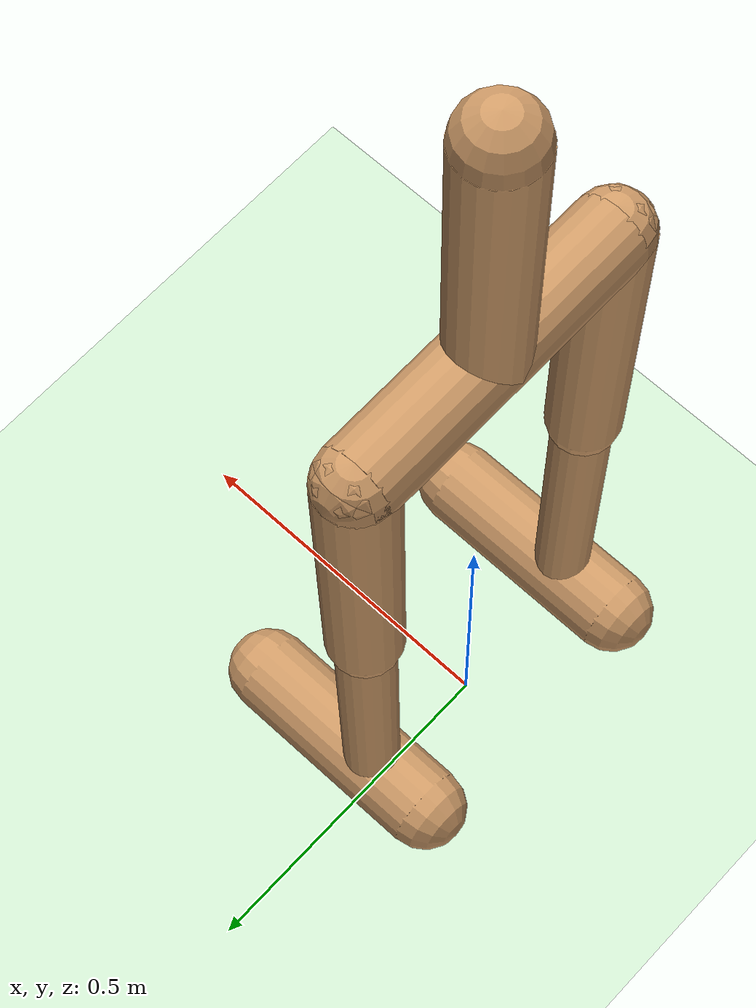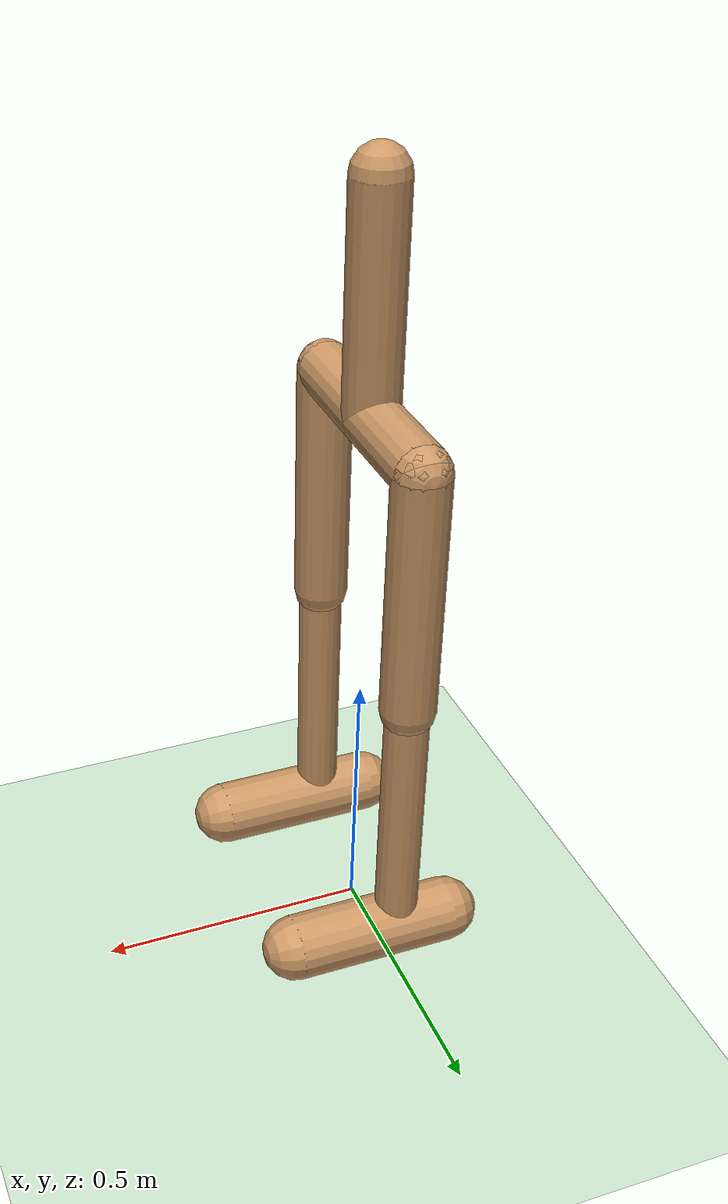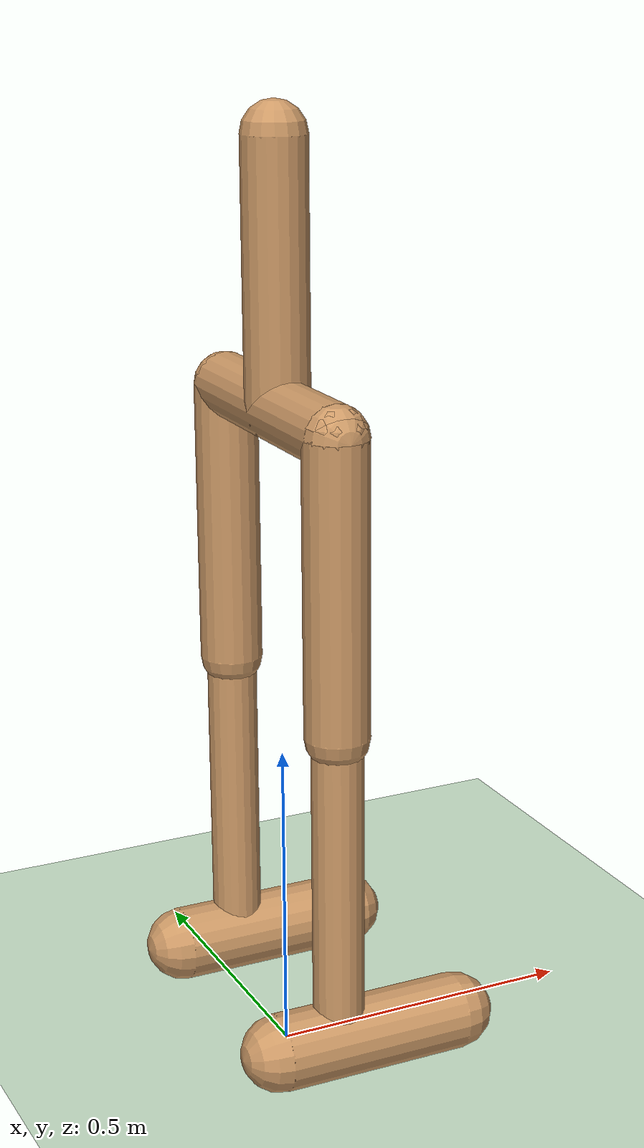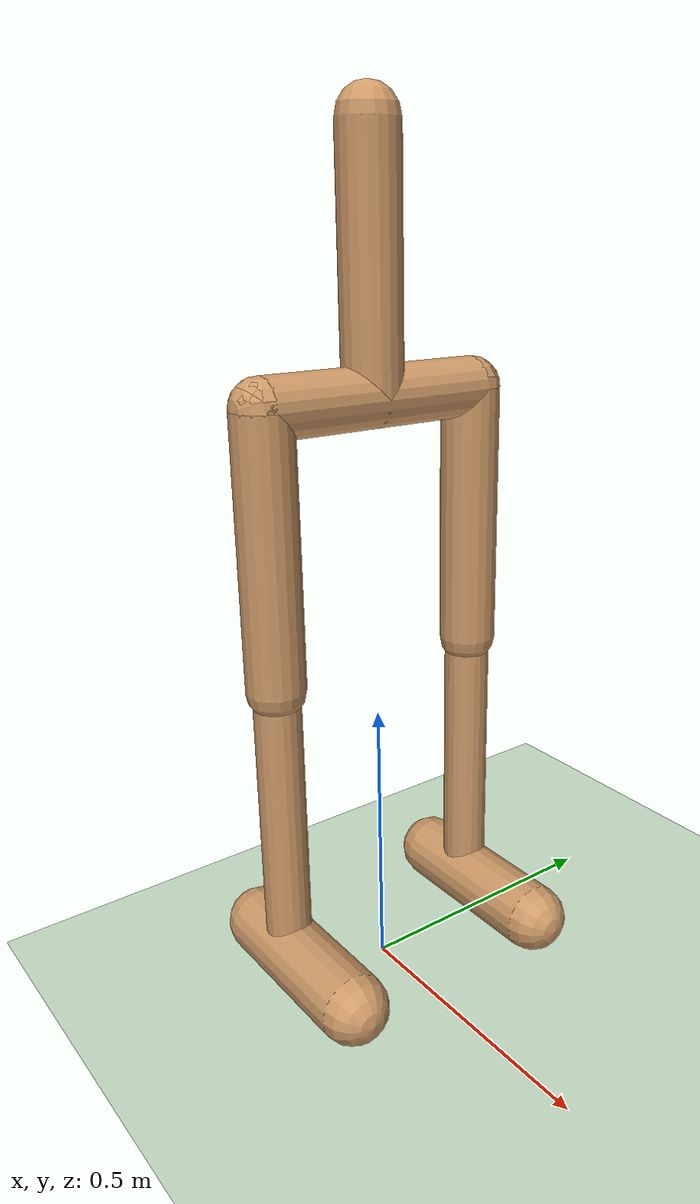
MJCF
<mujoco model="walker2d">
    <compiler angle="degree"  inertiafromgeom="true"/>
    <option timestep="0.002" iterations="50" solver="Newton" gravity="0 0 -9.81">
        <flag warmstart="enable"/>
    </option>
    <default>
        <joint armature="0.01" damping="0.1" limited="true"/>
        <geom conaffinity="1" contype="1" condim="3" density="1000" friction="0.8 0.1 0.1"
              margin="0.001" material="geom" rgba="0.8 0.6 0.4 1"/>
        <motor ctrllimited="true" ctrlrange="-1 1"/>
    </default>
    <asset>
        <texture type="skybox" builtin="gradient" rgb1="0.4 0.6 0.8" rgb2="0 0 0" width="512" height="512"/>
        <texture name="texplane" type="2d" builtin="checker" rgb1="0.2 0.3 0.4" rgb2="0.1 0.2 0.3" width="512" height="512"/>
        <material name="MatPlane" texture="texplane" texrepeat="1 1" texuniform="true" reflectance="0.5"/>
        <material name="geom" rgba="0.8 0.6 0.4 1"/>
    </asset>
    <worldbody>
        <light directional="true" diffuse="0.8 0.8 0.8" specular="0.2 0.2 0.2" pos="0 0 5" dir="0 0 -1"/>
        <geom name="floor" type="plane" pos="0 0 0" size="40 40 40" material="MatPlane" rgba="0.8 0.9 0.8 1" contype="1" conaffinity="1"/>

        <!-- 躯干 -->
        <body name="torso" pos="0 0 1.25">
            <camera name="track" pos="0 -3 1" xyaxes="1 0 0 0 0 1" mode="trackcom"/>
            <joint name="rootx" type="slide" pos="0 0 0" axis="1 0 0" limited="false"/>
            <joint name="rootz" type="slide" pos="0 0 0" axis="0 0 1" limited="false"/>
            <joint name="rooty" type="hinge" pos="0 0 0" axis="0 1 0" limited="false"/>
            <geom name="torso_geom" type="capsule" fromto="0 0 0.2 0 0 -0.2" size="0.05"/>
            <geom name="pitch_geom" type="capsule" fromto="0 0.2 -0.2 0 -0.2 -0.2" size="0.05"/>

            <!-- 右腿 -->
            <body name="thigh" pos="0 -0.2 -0.2">
                <joint name="thigh_joint" type="hinge" pos="0 0 0" axis="0 -1 0" range="-120 60"/>
                <geom name="thigh_geom" type="capsule" fromto="0 0 0 0 0 -0.45" size="0.05"/>
                <body name="leg" pos="0 0 -0.45">
                    <joint name="leg_joint" type="hinge" pos="0 0 0" axis="0 -1 0" range="-120 60"/>
                    <geom name="leg_geom" type="capsule" fromto="0 0 0 0 0 -0.5" size="0.04"/>
                    <body name="foot" pos="0 0 -0.5">
                        <joint name="foot_joint" type="hinge" pos="0 0 0" axis="0 -1 0" range="-45 45"/>
                        <geom name="foot_geom" type="capsule" fromto="-0.1 0 0 0.2 0 0" size="0.06"/>
                    </body>
                </body>
            </body>

            <!-- 左腿 -->
            <body name="thigh_left" pos="0 0.2 -0.2">
                <joint name="thigh_left_joint" type="hinge" pos="0 0 0" axis="0 -1 0" range="-120 60"/>
                <geom name="thigh_left_geom" type="capsule" fromto="0 0 0 0 0 -0.45" size="0.05"/>
                <body name="leg_left" pos="0 0 -0.45">
                    <joint name="leg_left_joint" type="hinge" pos="0 0 0" axis="0 -1 0" range="-120 60"/>
                    <geom name="leg_left_geom" type="capsule" fromto="0 0 0 0 0 -0.5" size="0.04"/>
                    <body name="foot_left" pos="0 0 -0.5">
                        <joint name="foot_left_joint" type="hinge" pos="0 0 0" axis="0 -1 0" range="-45 45"/>
                        <geom name="foot_left_geom" type="capsule" fromto="-0.1 0 0 0.2 0 0" size="0.06"/>
                    </body>
                </body>
            </body>
        </body>
    </worldbody>

    <actuator>
        <motor joint="thigh_joint" gear="100"/>
        <motor joint="leg_joint" gear="100"/>
        <motor joint="foot_joint" gear="100"/>
        <motor joint="thigh_left_joint" gear="100"/>
        <motor joint="leg_left_joint" gear="100"/>
        <motor joint="foot_left_joint" gear="100"/>
    </actuator>
</mujoco>
